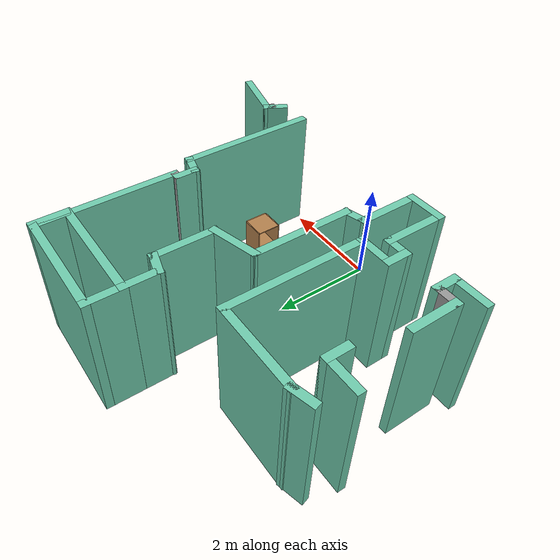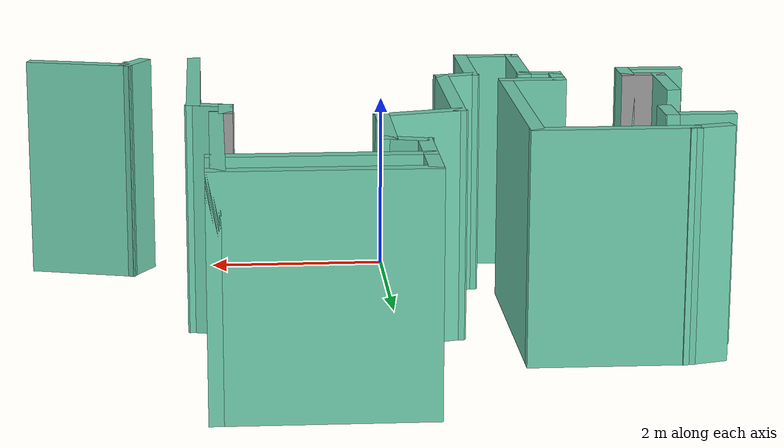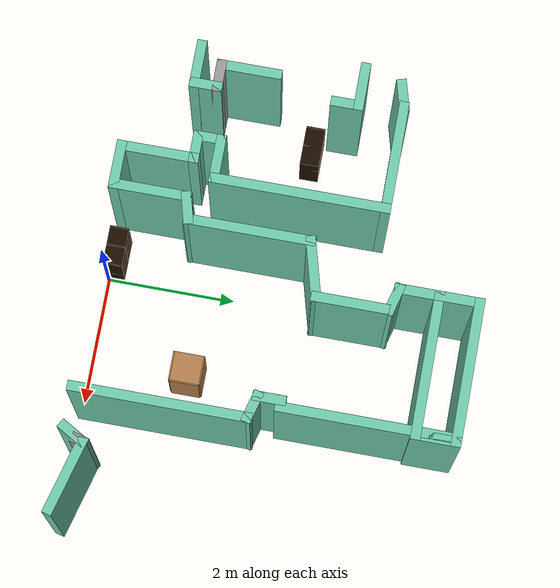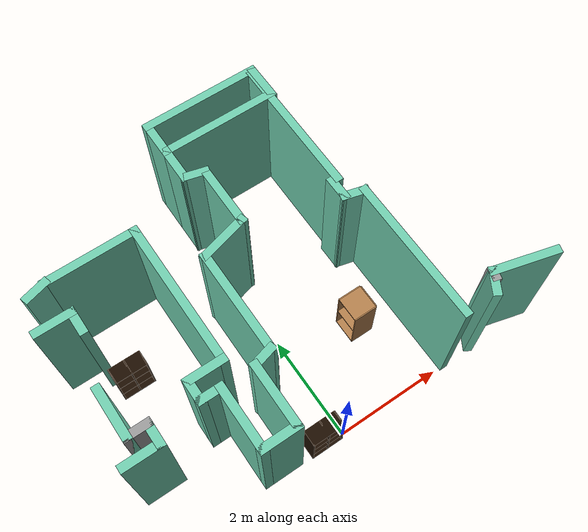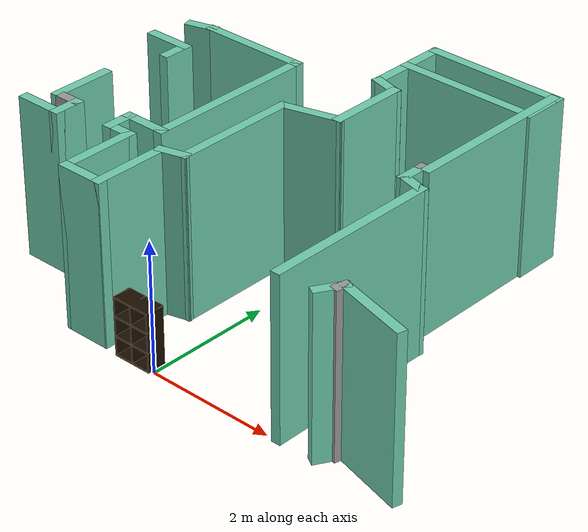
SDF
<sdf version="1.6">
 <world name="default">
  <model name="map_3">
   <pose>0.639107 -0.355311 0 0 -0 0</pose>
   <link name="Wall_0">
    <collision name="Wall_0_Collision">
     <geometry><box><size>2.25 0.15 2.5</size></box></geometry>
     <pose>0 0 1.25 0 -0 0</pose>
    </collision>
    <visual name="Wall_0_Visual">
     <pose>0 0 1.25 0 -0 0</pose>
     <geometry><box><size>2.25 0.15 2.5</size></box></geometry>
     <material>
      <script><uri>file://media/materials/scripts/gazebo.material</uri><name>Gazebo/Grey</name></script>
      <ambient>0.435294 0.796078 0.67451 1</ambient>
     </material>
     <meta><layer>0</layer></meta>
    </visual>
    <pose>0.303175 6.04258 0 0 -0 3.14159</pose>
   </link>
   <link name="Wall_1">
    <collision name="Wall_1_Collision">
     <geometry><box><size>0.75 0.15 2.5</size></box></geometry>
     <pose>0 0 1.25 0 -0 0</pose>
    </collision>
    <visual name="Wall_1_Visual">
     <pose>0 0 1.25 0 -0 0</pose>
     <geometry><box><size>0.75 0.15 2.5</size></box></geometry>
     <material>
      <script><uri>file://media/materials/scripts/gazebo.material</uri><name>Gazebo/Grey</name></script>
      <ambient>0.435294 0.796078 0.67451 1</ambient>
     </material>
     <meta><layer>0</layer></meta>
    </visual>
    <pose>-0.746825 5.74258 0 0 -0 -1.5708</pose>
   </link>
   <link name="Wall_10">
    <collision name="Wall_10_Collision">
     <geometry><box><size>0.5 0.15 2.5</size></box></geometry>
     <pose>0 0 1.25 0 -0 0</pose>
    </collision>
    <visual name="Wall_10_Visual">
     <pose>0 0 1.25 0 -0 0</pose>
     <geometry><box><size>0.5 0.15 2.5</size></box></geometry>
     <material>
      <script><uri>file://media/materials/scripts/gazebo.material</uri><name>Gazebo/Grey</name></script>
      <ambient>0.435294 0.796078 0.67451 1</ambient>
     </material>
     <meta><layer>0</layer></meta>
    </visual>
    <pose>-1.39882 1.53671 0 0 -0 -2.87979</pose>
   </link>
   <link name="Wall_103">
    <collision name="Wall_103_Collision">
     <geometry><box><size>1.25 0.15 2.5</size></box></geometry>
     <pose>0 0 1.25 0 -0 0</pose>
    </collision>
    <visual name="Wall_103_Visual">
     <pose>0 0 1.25 0 -0 0</pose>
     <geometry><box><size>1.25 0.15 2.5</size></box></geometry>
     <material>
      <script><uri>file://media/materials/scripts/gazebo.material</uri><name>Gazebo/Grey</name></script>
      <ambient>0.435294 0.796078 0.67451 1</ambient>
     </material>
     <meta><layer>0</layer></meta>
    </visual>
    <pose>2.85029 0.544515 0 0 -0 2.87979</pose>
   </link>
   <link name="Wall_104">
    <collision name="Wall_104_Collision">
     <geometry><box><size>0.25 0.15 2.5</size></box></geometry>
     <pose>0 0 1.25 0 -0 0</pose>
    </collision>
    <visual name="Wall_104_Visual">
     <pose>0 0 1.25 0 -0 0</pose>
     <geometry><box><size>0.25 0.15 2.5</size></box></geometry>
     <material>
      <script><uri>file://media/materials/scripts/gazebo.material</uri><name>Gazebo/Grey</name></script>
      <ambient>1 1 1 1</ambient>
     </material>
     <meta><layer>0</layer></meta>
    </visual>
    <pose>2.30609 0.638569 0 0 -0 -1.8326</pose>
   </link>
   <link name="Wall_108">
    <collision name="Wall_108_Collision">
     <geometry><box><size>0.5 0.15 2.5</size></box></geometry>
     <pose>0 0 1.25 0 -0 0</pose>
    </collision>
    <visual name="Wall_108_Visual">
     <pose>0 0 1.25 0 -0 0</pose>
     <geometry><box><size>0.5 0.15 2.5</size></box></geometry>
     <material>
      <script><uri>file://media/materials/scripts/gazebo.material</uri><name>Gazebo/Grey</name></script>
      <ambient>0.435294 0.796078 0.67451 1</ambient>
     </material>
     <meta><layer>0</layer></meta>
    </visual>
    <pose>2.23154 0.535311 0 0 -0 -2.0944</pose>
   </link>
   <link name="Wall_11">
    <collision name="Wall_11_Collision">
     <geometry><box><size>1.25 0.15 2.5</size></box></geometry>
     <pose>0 0 1.25 0 -0 0</pose>
    </collision>
    <visual name="Wall_11_Visual">
     <pose>0 0 1.25 0 -0 0</pose>
     <geometry><box><size>1.25 0.15 2.5</size></box></geometry>
     <material>
      <script><uri>file://media/materials/scripts/gazebo.material</uri><name>Gazebo/Grey</name></script>
      <ambient>0.435294 0.796078 0.67451 1</ambient>
     </material>
     <meta><layer>0</layer></meta>
    </visual>
    <pose>-1.56786 0.941415 0 0 -0 -1.5708</pose>
   </link>
   <link name="Wall_110">
    <collision name="Wall_110_Collision">
     <geometry><box><size>2.75 0.15 2.5</size></box></geometry>
     <pose>0 0 1.25 0 -0 0</pose>
    </collision>
    <visual name="Wall_110_Visual">
     <pose>0 0 1.25 0 -0 0</pose>
     <geometry><box><size>2.75 0.15 2.5</size></box></geometry>
     <material>
      <script><uri>file://media/materials/scripts/gazebo.material</uri><name>Gazebo/Grey</name></script>
      <ambient>0.435294 0.796078 0.67451 1</ambient>
     </material>
     <meta><layer>0</layer></meta>
    </visual>
    <pose>1.54404 1.68376 0 0 -0 1.5708</pose>
   </link>
   <link name="Wall_111">
    <collision name="Wall_111_Collision">
     <geometry><box><size>0.5 0.15 2.5</size></box></geometry>
     <pose>0 0 1.25 0 -0 0</pose>
    </collision>
    <visual name="Wall_111_Visual">
     <pose>0 0 1.25 0 -0 0</pose>
     <geometry><box><size>0.5 0.15 2.5</size></box></geometry>
     <material>
      <script><uri>file://media/materials/scripts/gazebo.material</uri><name>Gazebo/Grey</name></script>
      <ambient>0.435294 0.796078 0.67451 1</ambient>
     </material>
     <meta><layer>0</layer></meta>
    </visual>
    <pose>1.375 3.02905 0 0 -0 2.87979</pose>
   </link>
   <link name="Wall_112">
    <collision name="Wall_112_Collision">
     <geometry><box><size>0.5 0.15 2.5</size></box></geometry>
     <pose>0 0 1.25 0 -0 0</pose>
    </collision>
    <visual name="Wall_112_Visual">
     <pose>0 0 1.25 0 -0 0</pose>
     <geometry><box><size>0.5 0.15 2.5</size></box></geometry>
     <material>
      <script><uri>file://media/materials/scripts/gazebo.material</uri><name>Gazebo/Grey</name></script>
      <ambient>0.435294 0.796078 0.67451 1</ambient>
     </material>
     <meta><layer>0</layer></meta>
    </visual>
    <pose>1.20596 3.24934 0 0 -0 1.5708</pose>
   </link>
   <link name="Wall_113">
    <collision name="Wall_113_Collision">
     <geometry><box><size>0.25 0.15 2.5</size></box></geometry>
     <pose>0 0 1.25 0 -0 0</pose>
    </collision>
    <visual name="Wall_113_Visual">
     <pose>0 0 1.25 0 -0 0</pose>
     <geometry><box><size>0.25 0.15 2.5</size></box></geometry>
     <material>
      <script><uri>file://media/materials/scripts/gazebo.material</uri><name>Gazebo/Grey</name></script>
      <ambient>1 1 1 1</ambient>
     </material>
     <meta><layer>0</layer></meta>
    </visual>
    <pose>1.25596 3.42434 0 0 -0 0</pose>
   </link>
   <link name="Wall_114">
    <collision name="Wall_114_Collision">
     <geometry><box><size>2.75 0.15 2.5</size></box></geometry>
     <pose>0 0 1.25 0 -0 0</pose>
    </collision>
    <visual name="Wall_114_Visual">
     <pose>0 0 1.25 0 -0 0</pose>
     <geometry><box><size>2.75 0.15 2.5</size></box></geometry>
     <material>
      <script><uri>file://media/materials/scripts/gazebo.material</uri><name>Gazebo/Grey</name></script>
      <ambient>0.435294 0.796078 0.67451 1</ambient>
     </material>
     <meta><layer>0</layer></meta>
    </visual>
    <pose>1.30596 4.72434 0 0 -0 1.5708</pose>
   </link>
   <link name="Wall_12">
    <collision name="Wall_12_Collision">
     <geometry><box><size>0.75 0.15 2.5</size></box></geometry>
     <pose>0 0 1.25 0 -0 0</pose>
    </collision>
    <visual name="Wall_12_Visual">
     <pose>0 0 1.25 0 -0 0</pose>
     <geometry><box><size>0.75 0.15 2.5</size></box></geometry>
     <material>
      <script><uri>file://media/materials/scripts/gazebo.material</uri><name>Gazebo/Grey</name></script>
      <ambient>0.435294 0.796078 0.67451 1</ambient>
     </material>
     <meta><layer>0</layer></meta>
    </visual>
    <pose>-1.86786 0.391415 0 0 -0 3.14159</pose>
   </link>
   <link name="Wall_18">
    <collision name="Wall_18_Collision">
     <geometry><box><size>1.25 0.15 2.5</size></box></geometry>
     <pose>0 0 1.25 0 -0 0</pose>
    </collision>
    <visual name="Wall_18_Visual">
     <pose>0 0 1.25 0 -0 0</pose>
     <geometry><box><size>1.25 0.15 2.5</size></box></geometry>
     <material>
      <script><uri>file://media/materials/scripts/gazebo.material</uri><name>Gazebo/Grey</name></script>
      <ambient>0.435294 0.796078 0.67451 1</ambient>
     </material>
     <meta><layer>0</layer></meta>
    </visual>
    <pose>-2.16786 0.941415 0 0 -0 1.5708</pose>
   </link>
   <link name="Wall_19">
    <collision name="Wall_19_Collision">
     <geometry><box><size>0.5 0.15 2.5</size></box></geometry>
     <pose>0 0 1.25 0 -0 0</pose>
    </collision>
    <visual name="Wall_19_Visual">
     <pose>0 0 1.25 0 -0 0</pose>
     <geometry><box><size>0.5 0.15 2.5</size></box></geometry>
     <material>
      <script><uri>file://media/materials/scripts/gazebo.material</uri><name>Gazebo/Grey</name></script>
      <ambient>0.435294 0.796078 0.67451 1</ambient>
     </material>
     <meta><layer>0</layer></meta>
    </visual>
    <pose>-2.34286 1.49141 0 0 -0 3.14159</pose>
   </link>
   <link name="Wall_2">
    <collision name="Wall_2_Collision">
     <geometry><box><size>2.25 0.15 2.5</size></box></geometry>
     <pose>0 0 1.25 0 -0 0</pose>
    </collision>
    <visual name="Wall_2_Visual">
     <pose>0 0 1.25 0 -0 0</pose>
     <geometry><box><size>2.25 0.15 2.5</size></box></geometry>
     <material>
      <script><uri>file://media/materials/scripts/gazebo.material</uri><name>Gazebo/Grey</name></script>
      <ambient>0.435294 0.796078 0.67451 1</ambient>
     </material>
     <meta><layer>0</layer></meta>
    </visual>
    <pose>0.303175 5.44259 0 0 -0 0</pose>
   </link>
   <link name="Wall_22">
    <collision name="Wall_22_Collision">
     <geometry><box><size>0.5 0.15 2.5</size></box></geometry>
     <pose>0 0 1.25 0 -0 0</pose>
    </collision>
    <visual name="Wall_22_Visual">
     <pose>0 0 1.25 0 -0 0</pose>
     <geometry><box><size>0.5 0.15 2.5</size></box></geometry>
     <material>
      <script><uri>file://media/materials/scripts/gazebo.material</uri><name>Gazebo/Grey</name></script>
      <ambient>0.435294 0.796078 0.67451 1</ambient>
     </material>
     <meta><layer>0</layer></meta>
    </visual>
    <pose>-2.51786 1.66641 0 0 -0 1.5708</pose>
   </link>
   <link name="Wall_23">
    <collision name="Wall_23_Collision">
     <geometry><box><size>0.75 0.15 2.5</size></box></geometry>
     <pose>0 0 1.25 0 -0 0</pose>
    </collision>
    <visual name="Wall_23_Visual">
     <pose>0 0 1.25 0 -0 0</pose>
     <geometry><box><size>0.75 0.15 2.5</size></box></geometry>
     <material>
      <script><uri>file://media/materials/scripts/gazebo.material</uri><name>Gazebo/Grey</name></script>
      <ambient>0.435294 0.796078 0.67451 1</ambient>
     </material>
     <meta><layer>0</layer></meta>
    </visual>
    <pose>-2.21786 1.84142 0 0 -0 0</pose>
   </link>
   <link name="Wall_24">
    <collision name="Wall_24_Collision">
     <geometry><box><size>2.75 0.15 2.5</size></box></geometry>
     <pose>0 0 1.25 0 -0 0</pose>
    </collision>
    <visual name="Wall_24_Visual">
     <pose>0 0 1.25 0 -0 0</pose>
     <geometry><box><size>2.75 0.15 2.5</size></box></geometry>
     <material>
      <script><uri>file://media/materials/scripts/gazebo.material</uri><name>Gazebo/Grey</name></script>
      <ambient>0.435294 0.796078 0.67451 1</ambient>
     </material>
     <meta><layer>0</layer></meta>
    </visual>
    <pose>-1.91786 3.14141 0 0 -0 1.5708</pose>
   </link>
   <link name="Wall_25">
    <collision name="Wall_25_Collision">
     <geometry><box><size>1.75 0.15 2.5</size></box></geometry>
     <pose>0 0 1.25 0 -0 0</pose>
    </collision>
    <visual name="Wall_25_Visual">
     <pose>0 0 1.25 0 -0 0</pose>
     <geometry><box><size>1.75 0.15 2.5</size></box></geometry>
     <material>
      <script><uri>file://media/materials/scripts/gazebo.material</uri><name>Gazebo/Grey</name></script>
      <ambient>0.435294 0.796078 0.67451 1</ambient>
     </material>
     <meta><layer>0</layer></meta>
    </visual>
    <pose>-2.71786 4.44142 0 0 -0 3.14159</pose>
   </link>
   <link name="Wall_26">
    <collision name="Wall_26_Collision">
     <geometry><box><size>0.5 0.15 2.5</size></box></geometry>
     <pose>0 0 1.25 0 -0 0</pose>
    </collision>
    <visual name="Wall_26_Visual">
     <pose>0 0 1.25 0 -0 0</pose>
     <geometry><box><size>0.5 0.15 2.5</size></box></geometry>
     <material>
      <script><uri>file://media/materials/scripts/gazebo.material</uri><name>Gazebo/Grey</name></script>
      <ambient>0.435294 0.796078 0.67451 1</ambient>
     </material>
     <meta><layer>0</layer></meta>
    </visual>
    <pose>-3.6869 4.39612 0 0 -0 -2.87979</pose>
   </link>
   <link name="Wall_28">
    <collision name="Wall_28_Collision">
     <geometry><box><size>0.75 0.15 2.5</size></box></geometry>
     <pose>0 0 1.25 0 -0 0</pose>
    </collision>
    <visual name="Wall_28_Visual">
     <pose>0 0 1.25 0 -0 0</pose>
     <geometry><box><size>0.75 0.15 2.5</size></box></geometry>
     <material>
      <script><uri>file://media/materials/scripts/gazebo.material</uri><name>Gazebo/Grey</name></script>
      <ambient>0.435294 0.796078 0.67451 1</ambient>
     </material>
     <meta><layer>0</layer></meta>
    </visual>
    <pose>-3.71123 3.77127 0 0 -0 0</pose>
   </link>
   <link name="Wall_29">
    <collision name="Wall_29_Collision">
     <geometry><box><size>0.5 0.15 2.5</size></box></geometry>
     <pose>0 0 1.25 0 -0 0</pose>
    </collision>
    <visual name="Wall_29_Visual">
     <pose>0 0 1.25 0 -0 0</pose>
     <geometry><box><size>0.5 0.15 2.5</size></box></geometry>
     <material>
      <script><uri>file://media/materials/scripts/gazebo.material</uri><name>Gazebo/Grey</name></script>
      <ambient>0.435294 0.796078 0.67451 1</ambient>
     </material>
     <meta><layer>0</layer></meta>
    </visual>
    <pose>-3.41123 3.59627 0 0 -0 -1.5708</pose>
   </link>
   <link name="Wall_3">
    <collision name="Wall_3_Collision">
     <geometry><box><size>0.75 0.15 2.5</size></box></geometry>
     <pose>0 0 1.25 0 -0 0</pose>
    </collision>
    <visual name="Wall_3_Visual">
     <pose>0 0 1.25 0 -0 0</pose>
     <geometry><box><size>0.75 0.15 2.5</size></box></geometry>
     <material>
      <script><uri>file://media/materials/scripts/gazebo.material</uri><name>Gazebo/Grey</name></script>
      <ambient>0.435294 0.796078 0.67451 1</ambient>
     </material>
     <meta><layer>0</layer></meta>
    </visual>
    <pose>1.35318 5.74258 0 0 -0 1.5708</pose>
   </link>
   <link name="Wall_33">
    <collision name="Wall_33_Collision">
     <geometry><box><size>1 0.15 2.5</size></box></geometry>
     <pose>0 0 1.25 0 -0 0</pose>
    </collision>
    <visual name="Wall_33_Visual">
     <pose>0 0 1.25 0 -0 0</pose>
     <geometry><box><size>1 0.15 2.5</size></box></geometry>
     <material>
      <script><uri>file://media/materials/scripts/gazebo.material</uri><name>Gazebo/Grey</name></script>
      <ambient>0.435294 0.796078 0.67451 1</ambient>
     </material>
     <meta><layer>0</layer></meta>
    </visual>
    <pose>-3.67315 2.05569 0 0 -0 -1.5708</pose>
   </link>
   <link name="Wall_34">
    <collision name="Wall_34_Collision">
     <geometry><box><size>0.5 0.15 2.5</size></box></geometry>
     <pose>0 0 1.25 0 -0 0</pose>
    </collision>
    <visual name="Wall_34_Visual">
     <pose>0 0 1.25 0 -0 0</pose>
     <geometry><box><size>0.5 0.15 2.5</size></box></geometry>
     <material>
      <script><uri>file://media/materials/scripts/gazebo.material</uri><name>Gazebo/Grey</name></script>
      <ambient>1 1 1 1</ambient>
     </material>
     <meta><layer>0</layer></meta>
    </visual>
    <pose>-3.49815 1.63069 0 0 -0 0</pose>
   </link>
   <link name="Wall_35">
    <collision name="Wall_35_Collision">
     <geometry><box><size>0.5 0.15 2.5</size></box></geometry>
     <pose>0 0 1.25 0 -0 0</pose>
    </collision>
    <visual name="Wall_35_Visual">
     <pose>0 0 1.25 0 -0 0</pose>
     <geometry><box><size>0.5 0.15 2.5</size></box></geometry>
     <material>
      <script><uri>file://media/materials/scripts/gazebo.material</uri><name>Gazebo/Grey</name></script>
      <ambient>0.435294 0.796078 0.67451 1</ambient>
     </material>
     <meta><layer>0</layer></meta>
    </visual>
    <pose>-3.32315 1.45569 0 0 -0 -1.5708</pose>
   </link>
   <link name="Wall_36">
    <collision name="Wall_36_Collision">
     <geometry><box><size>0.75 0.15 2.5</size></box></geometry>
     <pose>0 0 1.25 0 -0 0</pose>
    </collision>
    <visual name="Wall_36_Visual">
     <pose>0 0 1.25 0 -0 0</pose>
     <geometry><box><size>0.75 0.15 2.5</size></box></geometry>
     <material>
      <script><uri>file://media/materials/scripts/gazebo.material</uri><name>Gazebo/Grey</name></script>
      <ambient>0.435294 0.796078 0.67451 1</ambient>
     </material>
     <meta><layer>0</layer></meta>
    </visual>
    <pose>-3.62315 1.28069 0 0 -0 3.14159</pose>
   </link>
   <link name="Wall_5">
    <collision name="Wall_5_Collision">
     <geometry><box><size>0.75 0.15 2.5</size></box></geometry>
     <pose>0 0 1.25 0 -0 0</pose>
    </collision>
    <visual name="Wall_5_Visual">
     <pose>0 0 1.25 0 -0 0</pose>
     <geometry><box><size>0.75 0.15 2.5</size></box></geometry>
     <material>
      <script><uri>file://media/materials/scripts/gazebo.material</uri><name>Gazebo/Grey</name></script>
      <ambient>0.435294 0.796078 0.67451 1</ambient>
     </material>
     <meta><layer>0</layer></meta>
    </visual>
    <pose>-0.746825 5.14258 0 0 -0 -1.5708</pose>
   </link>
   <link name="Wall_6">
    <collision name="Wall_6_Collision">
     <geometry><box><size>0.5 0.15 2.5</size></box></geometry>
     <pose>0 0 1.25 0 -0 0</pose>
    </collision>
    <visual name="Wall_6_Visual">
     <pose>0 0 1.25 0 -0 0</pose>
     <geometry><box><size>0.5 0.15 2.5</size></box></geometry>
     <material>
      <script><uri>file://media/materials/scripts/gazebo.material</uri><name>Gazebo/Grey</name></script>
      <ambient>0.435294 0.796078 0.67451 1</ambient>
     </material>
     <meta><layer>0</layer></meta>
    </visual>
    <pose>-0.577788 4.79729 0 0 -0 -0.261799</pose>
   </link>
   <link name="Wall_7">
    <collision name="Wall_7_Collision">
     <geometry><box><size>1.25 0.15 2.5</size></box></geometry>
     <pose>0 0 1.25 0 -0 0</pose>
    </collision>
    <visual name="Wall_7_Visual">
     <pose>0 0 1.25 0 -0 0</pose>
     <geometry><box><size>1.25 0.15 2.5</size></box></geometry>
     <material>
      <script><uri>file://media/materials/scripts/gazebo.material</uri><name>Gazebo/Grey</name></script>
      <ambient>0.435294 0.796078 0.67451 1</ambient>
     </material>
     <meta><layer>0</layer></meta>
    </visual>
    <pose>-0.408751 4.202 0 0 -0 -1.5708</pose>
   </link>
   <link name="Wall_8">
    <collision name="Wall_8_Collision">
     <geometry><box><size>1 0.15 2.5</size></box></geometry>
     <pose>0 0 1.25 0 -0 0</pose>
    </collision>
    <visual name="Wall_8_Visual">
     <pose>0 0 1.25 0 -0 0</pose>
     <geometry><box><size>1 0.15 2.5</size></box></geometry>
     <material>
      <script><uri>file://media/materials/scripts/gazebo.material</uri><name>Gazebo/Grey</name></script>
      <ambient>0.435294 0.796078 0.67451 1</ambient>
     </material>
     <meta><layer>0</layer></meta>
    </visual>
    <pose>-0.81927 3.542 0 0 -0 -2.87979</pose>
   </link>
   <link name="Wall_9">
    <collision name="Wall_9_Collision">
     <geometry><box><size>2 0.15 2.5</size></box></geometry>
     <pose>0 0 1.25 0 -0 0</pose>
    </collision>
    <visual name="Wall_9_Visual">
     <pose>0 0 1.25 0 -0 0</pose>
     <geometry><box><size>2 0.15 2.5</size></box></geometry>
     <material>
      <script><uri>file://media/materials/scripts/gazebo.material</uri><name>Gazebo/Grey</name></script>
      <ambient>0.435294 0.796078 0.67451 1</ambient>
     </material>
     <meta><layer>0</layer></meta>
    </visual>
    <pose>-1.22979 2.507 0 0 -0 -1.5708</pose>
   </link>
   <static>1</static>
  </model>
  <model name="6_Cube_StorageE">
   <link name="Wall_0">
    <pose>0 0 0.01 0 -0 0</pose>
    <inertial>
     <mass>1.6201</mass>
     <inertia><ixx>0.0119</ixx><iyy>0.0631</iyy><izz>0.0513</izz><ixy>0</ixy><ixz>0</ixz><iyz>0</iyz></inertia>
    </inertial>
    <collision name="Wall_0_Collision"><geometry><box><size>0.616 0.296 0.02</size></box></geometry></collision>
    <visual name="Wall_0_Visual">
     <geometry><box><size>0.616 0.296 0.02</size></box></geometry>
     <material>
      <script><uri>file://media/materials/scripts/gazebo.material</uri><name>Gazebo/Grey</name></script>
      <ambient>0.105882 0.0509804 0 1</ambient>
     </material>
    </visual>
   </link>
   <joint name="0_2" type="fixed">
    <pose>-0.308 0 0 0 -0 0</pose>
    <parent>Wall_2</parent>
    <child>Wall_0</child>
    <axis>
     <xyz>1 0 0</xyz>
     <use_parent_model_frame>0</use_parent_model_frame>
     <limit><lower>-1e+16</lower><upper>1e+16</upper></limit>
    </axis>
   </joint>
   <joint name="0_12" type="fixed">
    <parent>Wall_12</parent>
    <child>Wall_0</child>
    <axis>
     <xyz>0 0 1</xyz>
     <use_parent_model_frame>0</use_parent_model_frame>
     <limit><lower>-1e+16</lower><upper>1e+16</upper></limit>
    </axis>
   </joint>
   <joint name="0_4" type="fixed">
    <pose>0.308 0 0 0 -0 0</pose>
    <parent>Wall_4</parent>
    <child>Wall_0</child>
    <axis>
     <xyz>1 0 0</xyz>
     <use_parent_model_frame>0</use_parent_model_frame>
     <limit><lower>-1e+16</lower><upper>1e+16</upper></limit>
    </axis>
   </joint>
   <link name="Wall_10">
    <pose>0 0 0.61 0 -0 0</pose>
    <inertial>
     <mass>1.6201</mass>
     <inertia><ixx>0.0119</ixx><iyy>0.0631</iyy><izz>0.0513</izz><ixy>0</ixy><ixz>0</ixz><iyz>0</iyz></inertia>
    </inertial>
    <collision name="Wall_10_Collision"><geometry><box><size>0.616 0.296 0.02</size></box></geometry></collision>
    <visual name="Wall_10_Visual">
     <geometry><box><size>0.616 0.296 0.02</size></box></geometry>
     <material>
      <script><uri>file://media/materials/scripts/gazebo.material</uri><name>Gazebo/Grey</name></script>
      <ambient>0.105882 0.0509804 0 1</ambient>
     </material>
    </visual>
   </link>
   <joint name="10_2" type="fixed">
    <pose>-0.308 0 0 0 -0 0</pose>
    <parent>Wall_2</parent>
    <child>Wall_10</child>
    <axis>
     <xyz>1 0 0</xyz>
     <use_parent_model_frame>0</use_parent_model_frame>
     <limit><lower>-1e+16</lower><upper>1e+16</upper></limit>
    </axis>
   </joint>
   <joint name="10_12" type="fixed">
    <parent>Wall_12</parent>
    <child>Wall_10</child>
    <axis>
     <xyz>0 0 1</xyz>
     <use_parent_model_frame>0</use_parent_model_frame>
     <limit><lower>-1e+16</lower><upper>1e+16</upper></limit>
    </axis>
   </joint>
   <joint name="10_4" type="fixed">
    <pose>0.308 0 0 0 -0 0</pose>
    <parent>Wall_4</parent>
    <child>Wall_10</child>
    <axis>
     <xyz>1 0 0</xyz>
     <use_parent_model_frame>0</use_parent_model_frame>
     <limit><lower>-1e+16</lower><upper>1e+16</upper></limit>
    </axis>
   </joint>
   <link name="Wall_12">
    <pose>0 0 0.4575 0 -0 0</pose>
    <inertial>
     <mass>2.4065</mass>
     <inertia><ixx>0.0177</ixx><iyy>0.1855</iyy><izz>0.168</izz><ixy>0</ixy><ixz>0</ixz><iyz>0</iyz></inertia>
    </inertial>
    <collision name="Wall_12_Collision"><geometry><box><size>0.02 0.296 0.915</size></box></geometry></collision>
    <visual name="Wall_12_Visual">
     <geometry><box><size>0.02 0.296 0.915</size></box></geometry>
     <material>
      <script><uri>file://media/materials/scripts/gazebo.material</uri><name>Gazebo/Grey</name></script>
      <ambient>0.105882 0.0509804 0 1</ambient>
     </material>
    </visual>
   </link>
   <link name="Wall_2">
    <pose>-0.298 0 0.4575 0 -0 0</pose>
    <inertial>
     <mass>2.4065</mass>
     <inertia><ixx>0.0177</ixx><iyy>0.1855</iyy><izz>0.168</izz><ixy>0</ixy><ixz>0</ixz><iyz>0</iyz></inertia>
    </inertial>
    <collision name="Wall_2_Collision"><geometry><box><size>0.02 0.296 0.915</size></box></geometry></collision>
    <visual name="Wall_2_Visual">
     <geometry><box><size>0.02 0.296 0.915</size></box></geometry>
     <material>
      <script><uri>file://media/materials/scripts/gazebo.material</uri><name>Gazebo/Grey</name></script>
      <ambient>0.105882 0.0509804 0 1</ambient>
     </material>
    </visual>
   </link>
   <link name="Wall_4">
    <pose>0.298 0 0.4575 0 -0 0</pose>
    <inertial>
     <mass>2.4065</mass>
     <inertia><ixx>0.0177</ixx><iyy>0.1855</iyy><izz>0.168</izz><ixy>0</ixy><ixz>0</ixz><iyz>0</iyz></inertia>
    </inertial>
    <collision name="Wall_4_Collision"><geometry><box><size>0.02 0.296 0.915</size></box></geometry></collision>
    <visual name="Wall_4_Visual">
     <geometry><box><size>0.02 0.296 0.915</size></box></geometry>
     <material>
      <script><uri>file://media/materials/scripts/gazebo.material</uri><name>Gazebo/Grey</name></script>
      <ambient>0.105882 0.0509804 0 1</ambient>
     </material>
    </visual>
   </link>
   <link name="Wall_6">
    <pose>0 0 0.905 0 -0 0</pose>
    <inertial>
     <mass>1.6201</mass>
     <inertia><ixx>0.0119</ixx><iyy>0.0631</iyy><izz>0.0513</izz><ixy>0</ixy><ixz>0</ixz><iyz>0</iyz></inertia>
    </inertial>
    <collision name="Wall_6_Collision"><geometry><box><size>0.616 0.296 0.02</size></box></geometry></collision>
    <visual name="Wall_6_Visual">
     <geometry><box><size>0.616 0.296 0.02</size></box></geometry>
     <material>
      <script><uri>file://media/materials/scripts/gazebo.material</uri><name>Gazebo/Grey</name></script>
      <ambient>0.105882 0.0509804 0 1</ambient>
     </material>
    </visual>
   </link>
   <joint name="6_2" type="fixed">
    <pose>-0.308 0 0 0 -0 0</pose>
    <parent>Wall_2</parent>
    <child>Wall_6</child>
    <axis>
     <xyz>2 0 0</xyz>
     <use_parent_model_frame>0</use_parent_model_frame>
     <limit><lower>-1e+16</lower><upper>1e+16</upper></limit>
    </axis>
   </joint>
   <joint name="6_12" type="fixed">
    <parent>Wall_12</parent>
    <child>Wall_6</child>
    <axis>
     <xyz>0 0 1</xyz>
     <use_parent_model_frame>0</use_parent_model_frame>
     <limit><lower>-1e+16</lower><upper>1e+16</upper></limit>
    </axis>
   </joint>
   <joint name="6_4" type="fixed">
    <pose>0.308 0 0 0 -0 0</pose>
    <parent>Wall_4</parent>
    <child>Wall_6</child>
    <axis>
     <xyz>1 0 0</xyz>
     <use_parent_model_frame>0</use_parent_model_frame>
     <limit><lower>-1e+16</lower><upper>1e+16</upper></limit>
    </axis>
   </joint>
   <link name="Wall_8">
    <pose>0 0 0.305 0 -0 0</pose>
    <inertial>
     <mass>1.6201</mass>
     <inertia><ixx>0.0119</ixx><iyy>0.0631</iyy><izz>0.0513</izz><ixy>0</ixy><ixz>0</ixz><iyz>0</iyz></inertia>
    </inertial>
    <collision name="Wall_8_Collision"><geometry><box><size>0.616 0.296 0.02</size></box></geometry></collision>
    <visual name="Wall_8_Visual">
     <geometry><box><size>0.616 0.296 0.02</size></box></geometry>
     <material>
      <script><uri>file://media/materials/scripts/gazebo.material</uri><name>Gazebo/Grey</name></script>
      <ambient>0.105882 0.0509804 0 1</ambient>
     </material>
    </visual>
   </link>
   <joint name="8_2" type="fixed">
    <pose>-0.308 0 0 0 -0 0</pose>
    <parent>Wall_2</parent>
    <child>Wall_8</child>
    <axis>
     <xyz>1 0 0</xyz>
     <use_parent_model_frame>0</use_parent_model_frame>
     <limit><lower>-1e+16</lower><upper>1e+16</upper></limit>
    </axis>
   </joint>
   <joint name="8_12" type="fixed">
    <parent>Wall_12</parent>
    <child>Wall_8</child>
    <axis>
     <xyz>0 0 1</xyz>
     <use_parent_model_frame>0</use_parent_model_frame>
     <limit><lower>-1e+16</lower><upper>1e+16</upper></limit>
    </axis>
   </joint>
   <joint name="8_4" type="fixed">
    <pose>0.308 0 0 0 -0 0</pose>
    <parent>Wall_4</parent>
    <child>Wall_8</child>
    <axis>
     <xyz>1 0 0</xyz>
     <use_parent_model_frame>0</use_parent_model_frame>
     <limit><lower>-1e+16</lower><upper>1e+16</upper></limit>
    </axis>
   </joint>
   <static>1</static>
   <pose>-2.46992 2.798 0 0 -0 0</pose>
  </model>
  <model name="6_Cube_StorageE_1">
   <link name="Wall_0">
    <pose>0 0 0.01 0 -0 0</pose>
    <inertial>
     <mass>1.6201</mass>
     <inertia><ixx>0.0119</ixx><iyy>0.0631</iyy><izz>0.0513</izz><ixy>0</ixy><ixz>0</ixz><iyz>0</iyz></inertia>
    </inertial>
    <collision name="Wall_0_Collision"><geometry><box><size>0.616 0.296 0.02</size></box></geometry></collision>
    <visual name="Wall_0_Visual">
     <geometry><box><size>0.616 0.296 0.02</size></box></geometry>
     <material>
      <script><uri>file://media/materials/scripts/gazebo.material</uri><name>Gazebo/Grey</name></script>
      <ambient>0.105882 0.0509804 0 1</ambient>
     </material>
    </visual>
   </link>
   <joint name="0_2" type="fixed">
    <pose>-0.308 0 0 0 -0 0</pose>
    <parent>Wall_2</parent>
    <child>Wall_0</child>
    <axis>
     <xyz>1 0 0</xyz>
     <use_parent_model_frame>0</use_parent_model_frame>
     <limit><lower>-1e+16</lower><upper>1e+16</upper></limit>
    </axis>
   </joint>
   <joint name="0_12" type="fixed">
    <parent>Wall_12</parent>
    <child>Wall_0</child>
    <axis>
     <xyz>0 0 1</xyz>
     <use_parent_model_frame>0</use_parent_model_frame>
     <limit><lower>-1e+16</lower><upper>1e+16</upper></limit>
    </axis>
   </joint>
   <joint name="0_4" type="fixed">
    <pose>0.308 0 0 0 -0 0</pose>
    <parent>Wall_4</parent>
    <child>Wall_0</child>
    <axis>
     <xyz>1 0 0</xyz>
     <use_parent_model_frame>0</use_parent_model_frame>
     <limit><lower>-1e+16</lower><upper>1e+16</upper></limit>
    </axis>
   </joint>
   <link name="Wall_10">
    <pose>0 0 0.61 0 -0 0</pose>
    <inertial>
     <mass>1.6201</mass>
     <inertia><ixx>0.0119</ixx><iyy>0.0631</iyy><izz>0.0513</izz><ixy>0</ixy><ixz>0</ixz><iyz>0</iyz></inertia>
    </inertial>
    <collision name="Wall_10_Collision"><geometry><box><size>0.616 0.296 0.02</size></box></geometry></collision>
    <visual name="Wall_10_Visual">
     <geometry><box><size>0.616 0.296 0.02</size></box></geometry>
     <material>
      <script><uri>file://media/materials/scripts/gazebo.material</uri><name>Gazebo/Grey</name></script>
      <ambient>0.105882 0.0509804 0 1</ambient>
     </material>
    </visual>
   </link>
   <joint name="10_2" type="fixed">
    <pose>-0.308 0 0 0 -0 0</pose>
    <parent>Wall_2</parent>
    <child>Wall_10</child>
    <axis>
     <xyz>1 0 0</xyz>
     <use_parent_model_frame>0</use_parent_model_frame>
     <limit><lower>-1e+16</lower><upper>1e+16</upper></limit>
    </axis>
   </joint>
   <joint name="10_12" type="fixed">
    <parent>Wall_12</parent>
    <child>Wall_10</child>
    <axis>
     <xyz>0 0 1</xyz>
     <use_parent_model_frame>0</use_parent_model_frame>
     <limit><lower>-1e+16</lower><upper>1e+16</upper></limit>
    </axis>
   </joint>
   <joint name="10_4" type="fixed">
    <pose>0.308 0 0 0 -0 0</pose>
    <parent>Wall_4</parent>
    <child>Wall_10</child>
    <axis>
     <xyz>1 0 0</xyz>
     <use_parent_model_frame>0</use_parent_model_frame>
     <limit><lower>-1e+16</lower><upper>1e+16</upper></limit>
    </axis>
   </joint>
   <link name="Wall_12">
    <pose>0 0 0.4575 0 -0 0</pose>
    <inertial>
     <mass>2.4065</mass>
     <inertia><ixx>0.0177</ixx><iyy>0.1855</iyy><izz>0.168</izz><ixy>0</ixy><ixz>0</ixz><iyz>0</iyz></inertia>
    </inertial>
    <collision name="Wall_12_Collision"><geometry><box><size>0.02 0.296 0.915</size></box></geometry></collision>
    <visual name="Wall_12_Visual">
     <geometry><box><size>0.02 0.296 0.915</size></box></geometry>
     <material>
      <script><uri>file://media/materials/scripts/gazebo.material</uri><name>Gazebo/Grey</name></script>
      <ambient>0.105882 0.0509804 0 1</ambient>
     </material>
    </visual>
   </link>
   <link name="Wall_2">
    <pose>-0.298 0 0.4575 0 -0 0</pose>
    <inertial>
     <mass>2.4065</mass>
     <inertia><ixx>0.0177</ixx><iyy>0.1855</iyy><izz>0.168</izz><ixy>0</ixy><ixz>0</ixz><iyz>0</iyz></inertia>
    </inertial>
    <collision name="Wall_2_Collision"><geometry><box><size>0.02 0.296 0.915</size></box></geometry></collision>
    <visual name="Wall_2_Visual">
     <geometry><box><size>0.02 0.296 0.915</size></box></geometry>
     <material>
      <script><uri>file://media/materials/scripts/gazebo.material</uri><name>Gazebo/Grey</name></script>
      <ambient>0.105882 0.0509804 0 1</ambient>
     </material>
    </visual>
   </link>
   <link name="Wall_4">
    <pose>0.298 0 0.4575 0 -0 0</pose>
    <inertial>
     <mass>2.4065</mass>
     <inertia><ixx>0.0177</ixx><iyy>0.1855</iyy><izz>0.168</izz><ixy>0</ixy><ixz>0</ixz><iyz>0</iyz></inertia>
    </inertial>
    <collision name="Wall_4_Collision"><geometry><box><size>0.02 0.296 0.915</size></box></geometry></collision>
    <visual name="Wall_4_Visual">
     <geometry><box><size>0.02 0.296 0.915</size></box></geometry>
     <material>
      <script><uri>file://media/materials/scripts/gazebo.material</uri><name>Gazebo/Grey</name></script>
      <ambient>0.105882 0.0509804 0 1</ambient>
     </material>
    </visual>
   </link>
   <link name="Wall_6">
    <pose>0 0 0.905 0 -0 0</pose>
    <inertial>
     <mass>1.6201</mass>
     <inertia><ixx>0.0119</ixx><iyy>0.0631</iyy><izz>0.0513</izz><ixy>0</ixy><ixz>0</ixz><iyz>0</iyz></inertia>
    </inertial>
    <collision name="Wall_6_Collision"><geometry><box><size>0.616 0.296 0.02</size></box></geometry></collision>
    <visual name="Wall_6_Visual">
     <geometry><box><size>0.616 0.296 0.02</size></box></geometry>
     <material>
      <script><uri>file://media/materials/scripts/gazebo.material</uri><name>Gazebo/Grey</name></script>
      <ambient>0.105882 0.0509804 0 1</ambient>
     </material>
    </visual>
   </link>
   <joint name="6_2" type="fixed">
    <pose>-0.308 0 0 0 -0 0</pose>
    <parent>Wall_2</parent>
    <child>Wall_6</child>
    <axis>
     <xyz>2 0 0</xyz>
     <use_parent_model_frame>0</use_parent_model_frame>
     <limit><lower>-1e+16</lower><upper>1e+16</upper></limit>
    </axis>
   </joint>
   <joint name="6_12" type="fixed">
    <parent>Wall_12</parent>
    <child>Wall_6</child>
    <axis>
     <xyz>0 0 1</xyz>
     <use_parent_model_frame>0</use_parent_model_frame>
     <limit><lower>-1e+16</lower><upper>1e+16</upper></limit>
    </axis>
   </joint>
   <joint name="6_4" type="fixed">
    <pose>0.308 0 0 0 -0 0</pose>
    <parent>Wall_4</parent>
    <child>Wall_6</child>
    <axis>
     <xyz>1 0 0</xyz>
     <use_parent_model_frame>0</use_parent_model_frame>
     <limit><lower>-1e+16</lower><upper>1e+16</upper></limit>
    </axis>
   </joint>
   <link name="Wall_8">
    <pose>0 0 0.305 0 -0 0</pose>
    <inertial>
     <mass>1.6201</mass>
     <inertia><ixx>0.0119</ixx><iyy>0.0631</iyy><izz>0.0513</izz><ixy>0</ixy><ixz>0</ixz><iyz>0</iyz></inertia>
    </inertial>
    <collision name="Wall_8_Collision"><geometry><box><size>0.616 0.296 0.02</size></box></geometry></collision>
    <visual name="Wall_8_Visual">
     <geometry><box><size>0.616 0.296 0.02</size></box></geometry>
     <material>
      <script><uri>file://media/materials/scripts/gazebo.material</uri><name>Gazebo/Grey</name></script>
      <ambient>0.105882 0.0509804 0 1</ambient>
     </material>
    </visual>
   </link>
   <joint name="8_2" type="fixed">
    <pose>-0.308 0 0 0 -0 0</pose>
    <parent>Wall_2</parent>
    <child>Wall_8</child>
    <axis>
     <xyz>1 0 0</xyz>
     <use_parent_model_frame>0</use_parent_model_frame>
     <limit><lower>-1e+16</lower><upper>1e+16</upper></limit>
    </axis>
   </joint>
   <joint name="8_12" type="fixed">
    <parent>Wall_12</parent>
    <child>Wall_8</child>
    <axis>
     <xyz>0 0 1</xyz>
     <use_parent_model_frame>0</use_parent_model_frame>
     <limit><lower>-1e+16</lower><upper>1e+16</upper></limit>
    </axis>
   </joint>
   <joint name="8_4" type="fixed">
    <pose>0.308 0 0 0 -0 0</pose>
    <parent>Wall_4</parent>
    <child>Wall_8</child>
    <axis>
     <xyz>1 0 0</xyz>
     <use_parent_model_frame>0</use_parent_model_frame>
     <limit><lower>-1e+16</lower><upper>1e+16</upper></limit>
    </axis>
   </joint>
   <static>1</static>
   <pose>-0.353441 0.08818 0 0 -0 0</pose>
  </model>
  <model name="cabinet_2">
   <static>1</static>
   <link name="cabinet_bottom_plate">
    <inertial>
     <pose>0 0 -1 0 -0 0</pose>
     <inertia><ixx>2.05</ixx><ixy>0</ixy><ixz>0</ixz><iyy>2.05</iyy><iyz>0</iyz><izz>2.05</izz></inertia>
     <mass>25</mass>
    </inertial>
    <collision name="cabinet_bottom_plate_geom">
     <pose>0 0 0.01 0 -0 0</pose>
     <geometry><box><size>0.45 0.45 0.02</size></box></geometry>
    </collision>
    <visual name="cabinet_bottom_plate_geom_visual">
     <pose>0 0 0.01 0 -0 0</pose>
     <geometry><box><size>0.45 0.45 0.02</size></box></geometry>
     <material>
      <script><uri>file://media/materials/scripts/gazebo.material</uri><name>Gazebo/Wood</name></script>
     </material>
    </visual>
    <collision name="cabinet_bottom_plate_geom_cabinet_back_plate">
     <pose>0.235 0 0.51 0 -0 0</pose>
     <geometry><box><size>0.02 0.45 1.02</size></box></geometry>
    </collision>
    <visual name="cabinet_bottom_plate_geom_cabinet_back_plate_visual">
     <pose>0.235 0 0.51 0 -0 0</pose>
     <geometry><box><size>0.02 0.45 1.02</size></box></geometry>
     <material>
      <script><uri>file://media/materials/scripts/gazebo.material</uri><name>Gazebo/Wood</name></script>
     </material>
    </visual>
    <collision name="cabinet_bottom_plate_geom_cabinet_left_plate">
     <pose>0 0.235 0.51 0 -0 0</pose>
     <geometry><box><size>0.45 0.02 1.02</size></box></geometry>
    </collision>
    <visual name="cabinet_bottom_plate_geom_cabinet_left_plate_visual">
     <pose>0 0.235 0.51 0 -0 0</pose>
     <geometry><box><size>0.45 0.02 1.02</size></box></geometry>
     <material>
      <script><uri>file://media/materials/scripts/gazebo.material</uri><name>Gazebo/Wood</name></script>
     </material>
    </visual>
    <collision name="cabinet_bottom_plate_geom_cabinet_middle_plate">
     <pose>0 0 0.51 0 -0 0</pose>
     <geometry><box><size>0.45 0.45 0.02</size></box></geometry>
    </collision>
    <visual name="cabinet_bottom_plate_geom_cabinet_middle_plate_visual">
     <pose>0 0 0.51 0 -0 0</pose>
     <geometry><box><size>0.45 0.45 0.02</size></box></geometry>
     <material>
      <script><uri>file://media/materials/scripts/gazebo.material</uri><name>Gazebo/Wood</name></script>
     </material>
    </visual>
    <collision name="cabinet_bottom_plate_geom_cabinet_right_plate">
     <pose>0 -0.235 0.51 0 -0 0</pose>
     <geometry><box><size>0.45 0.02 1.02</size></box></geometry>
    </collision>
    <visual name="cabinet_bottom_plate_geom_cabinet_right_plate_visual">
     <pose>0 -0.235 0.51 0 -0 0</pose>
     <geometry><box><size>0.45 0.02 1.02</size></box></geometry>
     <material>
      <script><uri>file://media/materials/scripts/gazebo.material</uri><name>Gazebo/Wood</name></script>
     </material>
    </visual>
    <collision name="cabinet_bottom_plate_geom_cabinet_top_plate">
     <pose>0 0 1.01 0 -0 0</pose>
     <geometry><box><size>0.45 0.45 0.02</size></box></geometry>
    </collision>
    <visual name="cabinet_bottom_plate_geom_cabinet_top_plate_visual">
     <pose>0 0 1.01 0 -0 0</pose>
     <geometry><box><size>0.45 0.45 0.02</size></box></geometry>
     <material>
      <script><uri>file://media/materials/scripts/gazebo.material</uri><name>Gazebo/Wood</name></script>
     </material>
    </visual>
   </link>
   <pose>1.35497 1.52818 0 0 -0 0</pose>
  </model>
 </world>
</sdf>
